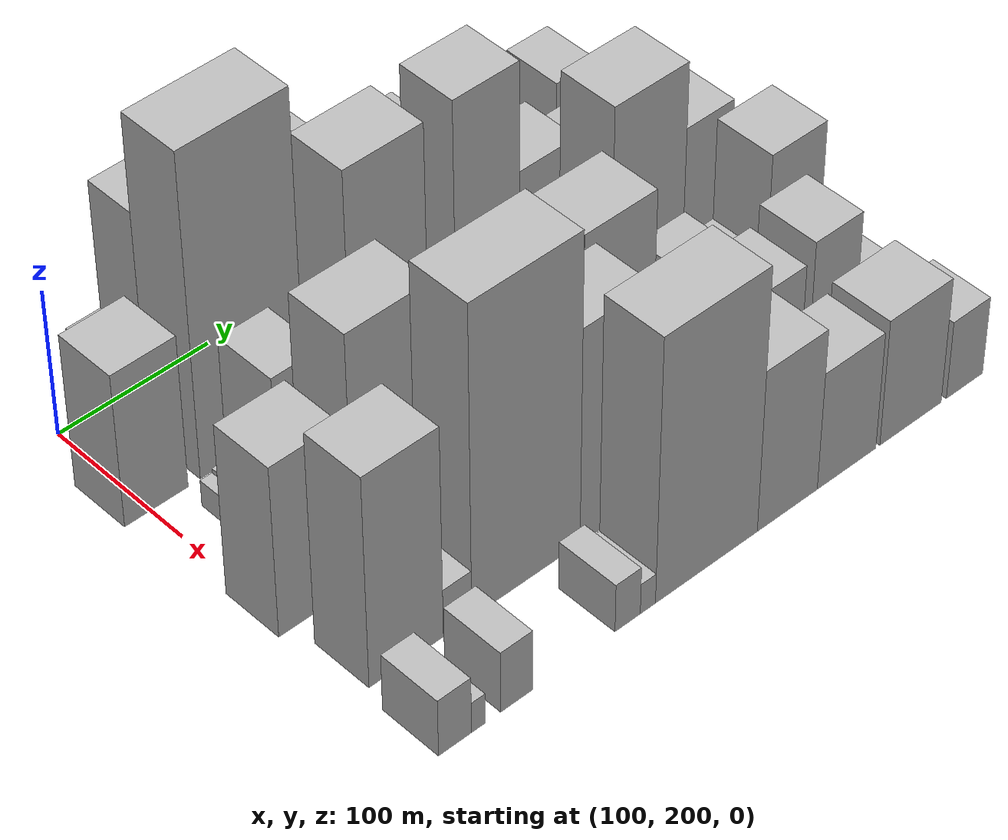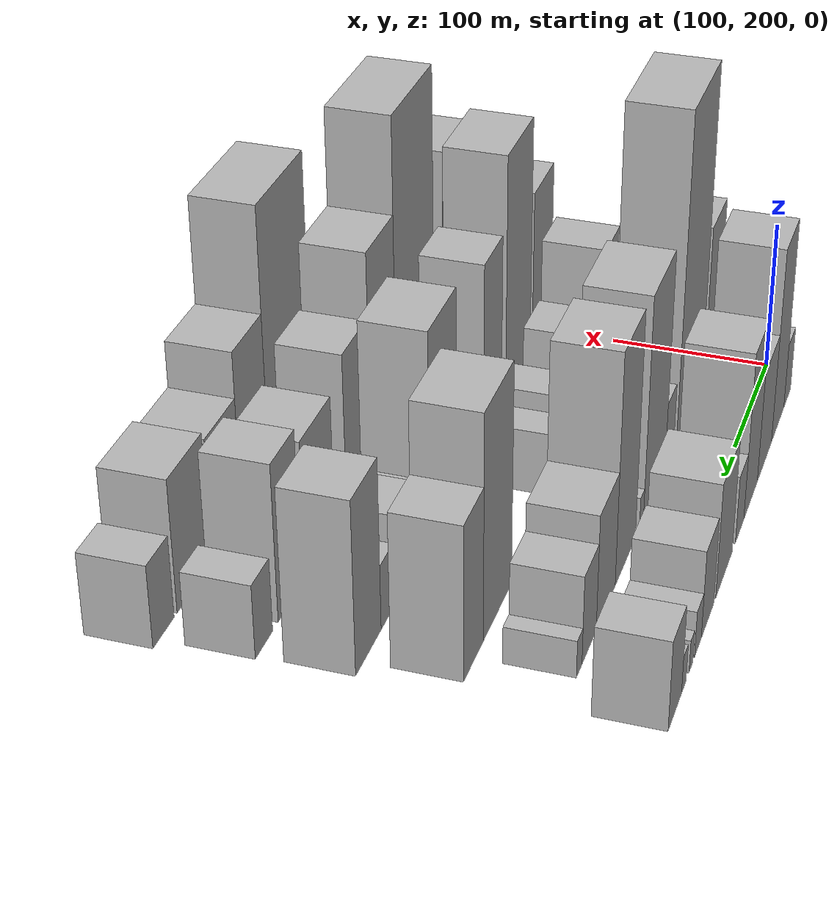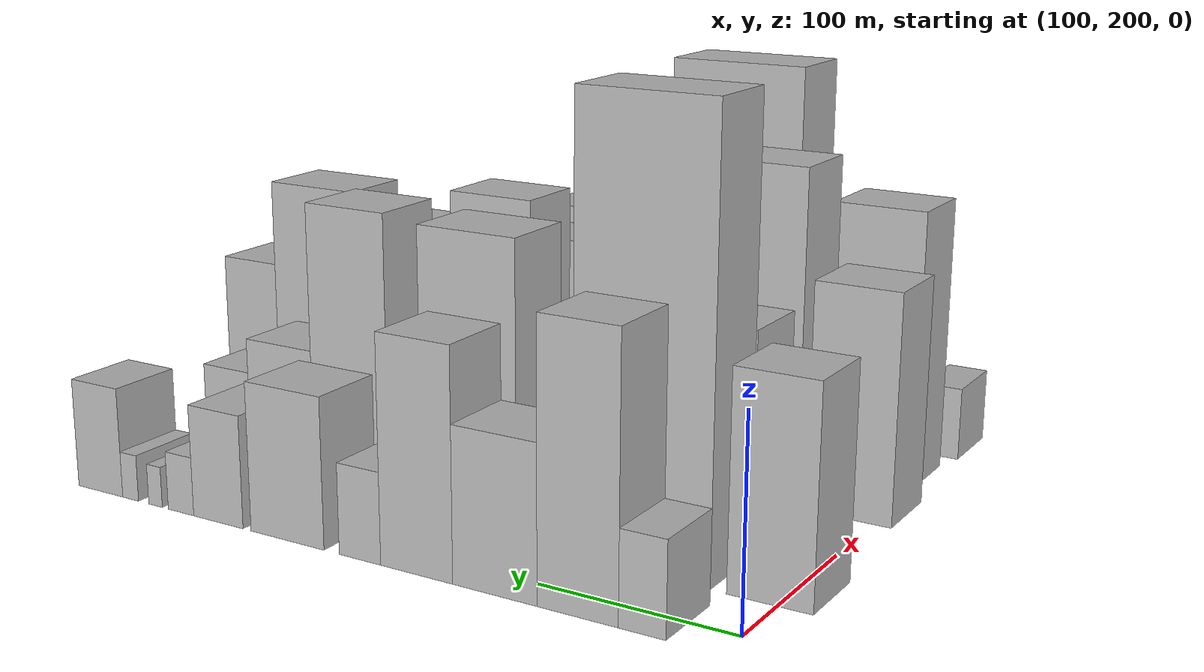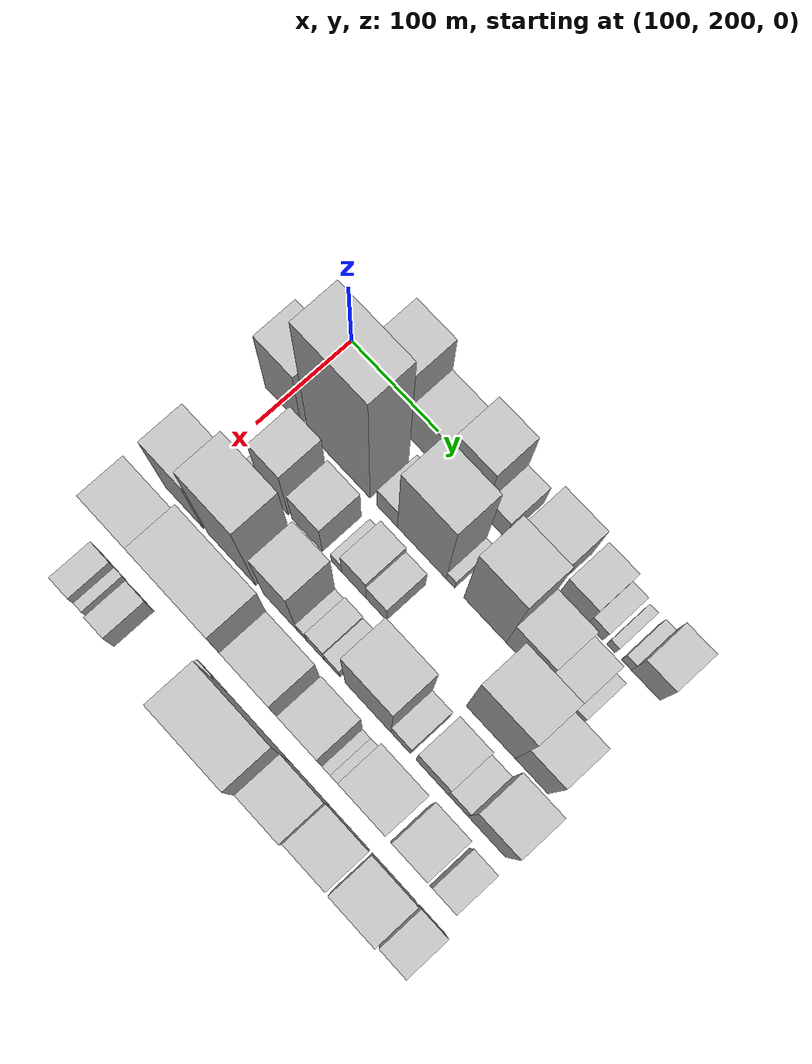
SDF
<sdf version="1.6">
 <world name="default">
  <model name="building_31">
   <static>1</static>
   <pose>100.0000 236.4385 0 0.000000 0.000000 0.000000</pose>
   <link name="link">
    <pose>0 0 22.50 0 0 0</pose>
    <collision name="collision"><geometry><box><size>40.0000 22.8084 45.0000</size></box></geometry></collision>
    <visual name="visual">
     <cast_shadows>0</cast_shadows>
     <geometry><box><size>40.0000 22.8084 45.0000</size></box></geometry>
     <material>
      <script>
       <uri>model://HANNAS_wall/materials/scripts</uri>
       <uri>model://HANNAS_wall/materials/textures</uri>
       <name>vrc/HANNAS_wall</name>
      </script>
     </material>
    </visual>
   </link>
  </model>
  <model name="building_32">
   <static>1</static>
   <pose>100.0000 268.0821 0 0.000000 0.000000 0.000000</pose>
   <link name="link">
    <pose>0 0 66.00 0 0 0</pose>
    <collision name="collision"><geometry><box><size>40.0000 40.4787 132.0000</size></box></geometry></collision>
    <visual name="visual">
     <cast_shadows>0</cast_shadows>
     <geometry><box><size>40.0000 40.4787 132.0000</size></box></geometry>
     <material>
      <script>
       <uri>model://HANNAS_wall/materials/scripts</uri>
       <uri>model://HANNAS_wall/materials/textures</uri>
       <name>vrc/HANNAS_wall</name>
      </script>
     </material>
    </visual>
   </link>
  </model>
  <model name="building_33">
   <static>1</static>
   <pose>100.0000 310.4709 0 0.000000 0.000000 0.000000</pose>
   <link name="link">
    <pose>0 0 37.50 0 0 0</pose>
    <collision name="collision"><geometry><box><size>40.0000 44.2989 75.0000</size></box></geometry></collision>
    <visual name="visual">
     <cast_shadows>0</cast_shadows>
     <geometry><box><size>40.0000 44.2989 75.0000</size></box></geometry>
     <material>
      <script>
       <uri>model://HANNAS_wall/materials/scripts</uri>
       <uri>model://HANNAS_wall/materials/textures</uri>
       <name>vrc/HANNAS_wall</name>
      </script>
     </material>
    </visual>
   </link>
  </model>
  <model name="building_34">
   <static>1</static>
   <pose>100.0000 352.6324 0 0.000000 0.000000 0.000000</pose>
   <link name="link">
    <pose>0 0 55.50 0 0 0</pose>
    <collision name="collision"><geometry><box><size>40.0000 40.0242 111.0000</size></box></geometry></collision>
    <visual name="visual">
     <cast_shadows>0</cast_shadows>
     <geometry><box><size>40.0000 40.0242 111.0000</size></box></geometry>
     <material>
      <script>
       <uri>model://HANNAS_wall/materials/scripts</uri>
       <uri>model://HANNAS_wall/materials/textures</uri>
       <name>vrc/HANNAS_wall</name>
      </script>
     </material>
    </visual>
   </link>
  </model>
  <model name="building_35">
   <static>1</static>
   <pose>100.0000 384.6178 0 0.000000 0.000000 0.000000</pose>
   <link name="link">
    <pose>0 0 22.50 0 0 0</pose>
    <collision name="collision"><geometry><box><size>40.0000 23.9466 45.0000</size></box></geometry></collision>
    <visual name="visual">
     <cast_shadows>0</cast_shadows>
     <geometry><box><size>40.0000 23.9466 45.0000</size></box></geometry>
     <material>
      <script>
       <uri>model://HANNAS_wall/materials/scripts</uri>
       <uri>model://HANNAS_wall/materials/textures</uri>
       <name>vrc/HANNAS_wall</name>
      </script>
     </material>
    </visual>
   </link>
  </model>
  <model name="building_36">
   <static>1</static>
   <pose>100.0000 427.8317 0 0.000000 0.000000 0.000000</pose>
   <link name="link">
    <pose>0 0 37.50 0 0 0</pose>
    <collision name="collision"><geometry><box><size>40.0000 44.4813 75.0000</size></box></geometry></collision>
    <visual name="visual">
     <cast_shadows>0</cast_shadows>
     <geometry><box><size>40.0000 44.4813 75.0000</size></box></geometry>
     <material>
      <script>
       <uri>model://HANNAS_wall/materials/scripts</uri>
       <uri>model://HANNAS_wall/materials/textures</uri>
       <name>vrc/HANNAS_wall</name>
      </script>
     </material>
    </visual>
   </link>
  </model>
  <model name="building_37">
   <static>1</static>
   <pose>100.0000 470.9186 0 0.000000 0.000000 0.000000</pose>
   <link name="link">
    <pose>0 0 28.50 0 0 0</pose>
    <collision name="collision"><geometry><box><size>40.0000 31.6924 57.0000</size></box></geometry></collision>
    <visual name="visual">
     <cast_shadows>0</cast_shadows>
     <geometry><box><size>40.0000 31.6924 57.0000</size></box></geometry>
     <material>
      <script>
       <uri>model://HANNAS_wall/materials/scripts</uri>
       <uri>model://HANNAS_wall/materials/textures</uri>
       <name>vrc/HANNAS_wall</name>
      </script>
     </material>
    </visual>
   </link>
  </model>
  <model name="building_38">
   <static>1</static>
   <pose>100.0000 495.1675 0 0.000000 0.000000 0.000000</pose>
   <link name="link">
    <pose>0 0 15.00 0 0 0</pose>
    <collision name="collision"><geometry><box><size>40.0000 16.8054 30.0000</size></box></geometry></collision>
    <visual name="visual">
     <cast_shadows>0</cast_shadows>
     <geometry><box><size>40.0000 16.8054 30.0000</size></box></geometry>
     <material>
      <script>
       <uri>model://HANNAS_wall/materials/scripts</uri>
       <uri>model://HANNAS_wall/materials/textures</uri>
       <name>vrc/HANNAS_wall</name>
      </script>
     </material>
    </visual>
   </link>
  </model>
  <model name="building_39">
   <static>1</static>
   <pose>100.0000 512.1227 0 0.000000 0.000000 0.000000</pose>
   <link name="link">
    <pose>0 0 10.50 0 0 0</pose>
    <collision name="collision"><geometry><box><size>40.0000 9.1050 21.0000</size></box></geometry></collision>
    <visual name="visual">
     <cast_shadows>0</cast_shadows>
     <geometry><box><size>40.0000 9.1050 21.0000</size></box></geometry>
     <material>
      <script>
       <uri>model://HANNAS_wall/materials/scripts</uri>
       <uri>model://HANNAS_wall/materials/textures</uri>
       <name>vrc/HANNAS_wall</name>
      </script>
     </material>
    </visual>
   </link>
  </model>
  <model name="building_40">
   <static>1</static>
   <pose>100.0000 529.0819 0 0.000000 0.000000 0.000000</pose>
   <link name="link">
    <pose>0 0 12.00 0 0 0</pose>
    <collision name="collision"><geometry><box><size>40.0000 10.8135 24.0000</size></box></geometry></collision>
    <visual name="visual">
     <cast_shadows>0</cast_shadows>
     <geometry><box><size>40.0000 10.8135 24.0000</size></box></geometry>
     <material>
      <script>
       <uri>model://HANNAS_wall/materials/scripts</uri>
       <uri>model://HANNAS_wall/materials/textures</uri>
       <name>vrc/HANNAS_wall</name>
      </script>
     </material>
    </visual>
   </link>
  </model>
  <model name="building_41">
   <static>1</static>
   <pose>100.0000 549.8728 0 0.000000 0.000000 0.000000</pose>
   <link name="link">
    <pose>0 0 28.50 0 0 0</pose>
    <collision name="collision"><geometry><box><size>40.0000 30.7684 57.0000</size></box></geometry></collision>
    <visual name="visual">
     <cast_shadows>0</cast_shadows>
     <geometry><box><size>40.0000 30.7684 57.0000</size></box></geometry>
     <material>
      <script>
       <uri>model://HANNAS_wall/materials/scripts</uri>
       <uri>model://HANNAS_wall/materials/textures</uri>
       <name>vrc/HANNAS_wall</name>
      </script>
     </material>
    </visual>
   </link>
  </model>
  <model name="building_84">
   <static>1</static>
   <pose>155.0000 203.7730 0 0.000000 0.000000 0.000000</pose>
   <link name="link">
    <pose>0 0 52.50 0 0 0</pose>
    <collision name="collision"><geometry><box><size>40.0000 41.4621 105.0000</size></box></geometry></collision>
    <visual name="visual">
     <cast_shadows>0</cast_shadows>
     <geometry><box><size>40.0000 41.4621 105.0000</size></box></geometry>
     <material>
      <script>
       <uri>model://HANNAS_wall/materials/scripts</uri>
       <uri>model://HANNAS_wall/materials/textures</uri>
       <name>vrc/HANNAS_wall</name>
      </script>
     </material>
    </visual>
   </link>
  </model>
  <model name="building_85">
   <static>1</static>
   <pose>155.0000 267.9622 0 0.000000 0.000000 0.000000</pose>
   <link name="link">
    <pose>0 0 109.50 0 0 0</pose>
    <collision name="collision"><geometry><box><size>40.0000 70.9164 219.0000</size></box></geometry></collision>
    <visual name="visual">
     <cast_shadows>0</cast_shadows>
     <geometry><box><size>40.0000 70.9164 219.0000</size></box></geometry>
     <material>
      <script>
       <uri>model://HANNAS_wall/materials/scripts</uri>
       <uri>model://HANNAS_wall/materials/textures</uri>
       <name>vrc/HANNAS_wall</name>
      </script>
     </material>
    </visual>
   </link>
  </model>
  <model name="building_86">
   <static>1</static>
   <pose>155.0000 322.9409 0 0.000000 0.000000 0.000000</pose>
   <link name="link">
    <pose>0 0 22.50 0 0 0</pose>
    <collision name="collision"><geometry><box><size>40.0000 23.0409 45.0000</size></box></geometry></collision>
    <visual name="visual">
     <cast_shadows>0</cast_shadows>
     <geometry><box><size>40.0000 23.0409 45.0000</size></box></geometry>
     <material>
      <script>
       <uri>model://HANNAS_wall/materials/scripts</uri>
       <uri>model://HANNAS_wall/materials/textures</uri>
       <name>vrc/HANNAS_wall</name>
      </script>
     </material>
    </visual>
   </link>
  </model>
  <model name="building_87">
   <static>1</static>
   <pose>155.0000 361.7019 0 0.000000 0.000000 0.000000</pose>
   <link name="link">
    <pose>0 0 73.50 0 0 0</pose>
    <collision name="collision"><geometry><box><size>40.0000 54.4810 147.0000</size></box></geometry></collision>
    <visual name="visual">
     <cast_shadows>0</cast_shadows>
     <geometry><box><size>40.0000 54.4810 147.0000</size></box></geometry>
     <material>
      <script>
       <uri>model://HANNAS_wall/materials/scripts</uri>
       <uri>model://HANNAS_wall/materials/textures</uri>
       <name>vrc/HANNAS_wall</name>
      </script>
     </material>
    </visual>
   </link>
  </model>
  <model name="building_88">
   <static>1</static>
   <pose>155.0000 393.8146 0 0.000000 0.000000 0.000000</pose>
   <link name="link">
    <pose>0 0 10.50 0 0 0</pose>
    <collision name="collision"><geometry><box><size>40.0000 9.7444 21.0000</size></box></geometry></collision>
    <visual name="visual">
     <cast_shadows>0</cast_shadows>
     <geometry><box><size>40.0000 9.7444 21.0000</size></box></geometry>
     <material>
      <script>
       <uri>model://HANNAS_wall/materials/scripts</uri>
       <uri>model://HANNAS_wall/materials/textures</uri>
       <name>vrc/HANNAS_wall</name>
      </script>
     </material>
    </visual>
   </link>
  </model>
  <model name="building_89">
   <static>1</static>
   <pose>155.0000 432.0430 0 0.000000 0.000000 0.000000</pose>
   <link name="link">
    <pose>0 0 75.00 0 0 0</pose>
    <collision name="collision"><geometry><box><size>40.0000 46.7124 150.0000</size></box></geometry></collision>
    <visual name="visual">
     <cast_shadows>0</cast_shadows>
     <geometry><box><size>40.0000 46.7124 150.0000</size></box></geometry>
     <material>
      <script>
       <uri>model://HANNAS_wall/materials/scripts</uri>
       <uri>model://HANNAS_wall/materials/textures</uri>
       <name>vrc/HANNAS_wall</name>
      </script>
     </material>
    </visual>
   </link>
  </model>
  <model name="building_90">
   <static>1</static>
   <pose>155.0000 476.1677 0 0.000000 0.000000 0.000000</pose>
   <link name="link">
    <pose>0 0 37.50 0 0 0</pose>
    <collision name="collision"><geometry><box><size>40.0000 41.5370 75.0000</size></box></geometry></collision>
    <visual name="visual">
     <cast_shadows>0</cast_shadows>
     <geometry><box><size>40.0000 41.5370 75.0000</size></box></geometry>
     <material>
      <script>
       <uri>model://HANNAS_wall/materials/scripts</uri>
       <uri>model://HANNAS_wall/materials/textures</uri>
       <name>vrc/HANNAS_wall</name>
      </script>
     </material>
    </visual>
   </link>
  </model>
  <model name="building_91">
   <static>1</static>
   <pose>155.0000 511.8424 0 0.000000 0.000000 0.000000</pose>
   <link name="link">
    <pose>0 0 28.50 0 0 0</pose>
    <collision name="collision"><geometry><box><size>40.0000 29.8126 57.0000</size></box></geometry></collision>
    <visual name="visual">
     <cast_shadows>0</cast_shadows>
     <geometry><box><size>40.0000 29.8126 57.0000</size></box></geometry>
     <material>
      <script>
       <uri>model://HANNAS_wall/materials/scripts</uri>
       <uri>model://HANNAS_wall/materials/textures</uri>
       <name>vrc/HANNAS_wall</name>
      </script>
     </material>
    </visual>
   </link>
  </model>
  <model name="building_92">
   <static>1</static>
   <pose>155.0000 532.4043 0 0.000000 0.000000 0.000000</pose>
   <link name="link">
    <pose>0 0 12.00 0 0 0</pose>
    <collision name="collision"><geometry><box><size>40.0000 11.3112 24.0000</size></box></geometry></collision>
    <visual name="visual">
     <cast_shadows>0</cast_shadows>
     <geometry><box><size>40.0000 11.3112 24.0000</size></box></geometry>
     <material>
      <script>
       <uri>model://HANNAS_wall/materials/scripts</uri>
       <uri>model://HANNAS_wall/materials/textures</uri>
       <name>vrc/HANNAS_wall</name>
      </script>
     </material>
    </visual>
   </link>
  </model>
  <model name="building_133">
   <static>1</static>
   <pose>210.0000 225.0941 0 0.000000 0.000000 0.000000</pose>
   <link name="link">
    <pose>0 0 9.00 0 0 0</pose>
    <collision name="collision"><geometry><box><size>40.0000 8.0562 18.0000</size></box></geometry></collision>
    <visual name="visual">
     <cast_shadows>0</cast_shadows>
     <geometry><box><size>40.0000 8.0562 18.0000</size></box></geometry>
     <material>
      <script>
       <uri>model://HANNAS_wall/materials/scripts</uri>
       <uri>model://HANNAS_wall/materials/textures</uri>
       <name>vrc/HANNAS_wall</name>
      </script>
     </material>
    </visual>
   </link>
  </model>
  <model name="building_134">
   <static>1</static>
   <pose>210.0000 233.9001 0 0.000000 0.000000 0.000000</pose>
   <link name="link">
    <pose>0 0 10.50 0 0 0</pose>
    <collision name="collision"><geometry><box><size>40.0000 9.5558 21.0000</size></box></geometry></collision>
    <visual name="visual">
     <cast_shadows>0</cast_shadows>
     <geometry><box><size>40.0000 9.5558 21.0000</size></box></geometry>
     <material>
      <script>
       <uri>model://HANNAS_wall/materials/scripts</uri>
       <uri>model://HANNAS_wall/materials/textures</uri>
       <name>vrc/HANNAS_wall</name>
      </script>
     </material>
    </visual>
   </link>
  </model>
  <model name="building_135">
   <static>1</static>
   <pose>210.0000 254.8909 0 0.000000 0.000000 0.000000</pose>
   <link name="link">
    <pose>0 0 52.50 0 0 0</pose>
    <collision name="collision"><geometry><box><size>40.0000 32.4257 105.0000</size></box></geometry></collision>
    <visual name="visual">
     <cast_shadows>0</cast_shadows>
     <geometry><box><size>40.0000 32.4257 105.0000</size></box></geometry>
     <material>
      <script>
       <uri>model://HANNAS_wall/materials/scripts</uri>
       <uri>model://HANNAS_wall/materials/textures</uri>
       <name>vrc/HANNAS_wall</name>
      </script>
     </material>
    </visual>
   </link>
  </model>
  <model name="building_136">
   <static>1</static>
   <pose>210.0000 292.4346 0 0.000000 0.000000 0.000000</pose>
   <link name="link">
    <pose>0 0 33.00 0 0 0</pose>
    <collision name="collision"><geometry><box><size>40.0000 34.6618 66.0000</size></box></geometry></collision>
    <visual name="visual">
     <cast_shadows>0</cast_shadows>
     <geometry><box><size>40.0000 34.6618 66.0000</size></box></geometry>
     <material>
      <script>
       <uri>model://HANNAS_wall/materials/scripts</uri>
       <uri>model://HANNAS_wall/materials/textures</uri>
       <name>vrc/HANNAS_wall</name>
      </script>
     </material>
    </visual>
   </link>
  </model>
  <model name="building_137">
   <static>1</static>
   <pose>210.0000 325.6963 0 0.000000 0.000000 0.000000</pose>
   <link name="link">
    <pose>0 0 12.00 0 0 0</pose>
    <collision name="collision"><geometry><box><size>40.0000 11.8617 24.0000</size></box></geometry></collision>
    <visual name="visual">
     <cast_shadows>0</cast_shadows>
     <geometry><box><size>40.0000 11.8617 24.0000</size></box></geometry>
     <material>
      <script>
       <uri>model://HANNAS_wall/materials/scripts</uri>
       <uri>model://HANNAS_wall/materials/textures</uri>
       <name>vrc/HANNAS_wall</name>
      </script>
     </material>
    </visual>
   </link>
  </model>
  <model name="building_138">
   <static>1</static>
   <pose>210.0000 345.3453 0 0.000000 0.000000 0.000000</pose>
   <link name="link">
    <pose>0 0 27.00 0 0 0</pose>
    <collision name="collision"><geometry><box><size>40.0000 27.4362 54.0000</size></box></geometry></collision>
    <visual name="visual">
     <cast_shadows>0</cast_shadows>
     <geometry><box><size>40.0000 27.4362 54.0000</size></box></geometry>
     <material>
      <script>
       <uri>model://HANNAS_wall/materials/scripts</uri>
       <uri>model://HANNAS_wall/materials/textures</uri>
       <name>vrc/HANNAS_wall</name>
      </script>
     </material>
    </visual>
   </link>
  </model>
  <model name="building_139">
   <static>1</static>
   <pose>210.0000 370.4909 0 0.000000 0.000000 0.000000</pose>
   <link name="link">
    <pose>0 0 21.00 0 0 0</pose>
    <collision name="collision"><geometry><box><size>40.0000 22.8548 42.0000</size></box></geometry></collision>
    <visual name="visual">
     <cast_shadows>0</cast_shadows>
     <geometry><box><size>40.0000 22.8548 42.0000</size></box></geometry>
     <material>
      <script>
       <uri>model://HANNAS_wall/materials/scripts</uri>
       <uri>model://HANNAS_wall/materials/textures</uri>
       <name>vrc/HANNAS_wall</name>
      </script>
     </material>
    </visual>
   </link>
  </model>
  <model name="building_140">
   <static>1</static>
   <pose>210.0000 496.8057 0 0.000000 0.000000 0.000000</pose>
   <link name="link">
    <pose>0 0 72.00 0 0 0</pose>
    <collision name="collision"><geometry><box><size>40.0000 53.2583 144.0000</size></box></geometry></collision>
    <visual name="visual">
     <cast_shadows>0</cast_shadows>
     <geometry><box><size>40.0000 53.2583 144.0000</size></box></geometry>
     <material>
      <script>
       <uri>model://HANNAS_wall/materials/scripts</uri>
       <uri>model://HANNAS_wall/materials/textures</uri>
       <name>vrc/HANNAS_wall</name>
      </script>
     </material>
    </visual>
   </link>
  </model>
  <model name="building_141">
   <static>1</static>
   <pose>210.0000 541.0816 0 0.000000 0.000000 0.000000</pose>
   <link name="link">
    <pose>0 0 49.50 0 0 0</pose>
    <collision name="collision"><geometry><box><size>40.0000 35.2934 99.0000</size></box></geometry></collision>
    <visual name="visual">
     <cast_shadows>0</cast_shadows>
     <geometry><box><size>40.0000 35.2934 99.0000</size></box></geometry>
     <material>
      <script>
       <uri>model://HANNAS_wall/materials/scripts</uri>
       <uri>model://HANNAS_wall/materials/textures</uri>
       <name>vrc/HANNAS_wall</name>
      </script>
     </material>
    </visual>
   </link>
  </model>
  <model name="building_180">
   <static>1</static>
   <pose>265.0000 213.1099 0 0.000000 0.000000 0.000000</pose>
   <link name="link">
    <pose>0 0 58.50 0 0 0</pose>
    <collision name="collision"><geometry><box><size>40.0000 44.5974 117.0000</size></box></geometry></collision>
    <visual name="visual">
     <cast_shadows>0</cast_shadows>
     <geometry><box><size>40.0000 44.5974 117.0000</size></box></geometry>
     <material>
      <script>
       <uri>model://HANNAS_wall/materials/scripts</uri>
       <uri>model://HANNAS_wall/materials/textures</uri>
       <name>vrc/HANNAS_wall</name>
      </script>
     </material>
    </visual>
   </link>
  </model>
  <model name="building_181">
   <static>1</static>
   <pose>265.0000 267.8308 0 0.000000 0.000000 0.000000</pose>
   <link name="link">
    <pose>0 0 85.50 0 0 0</pose>
    <collision name="collision"><geometry><box><size>40.0000 54.8445 171.0000</size></box></geometry></collision>
    <visual name="visual">
     <cast_shadows>0</cast_shadows>
     <geometry><box><size>40.0000 54.8445 171.0000</size></box></geometry>
     <material>
      <script>
       <uri>model://HANNAS_wall/materials/scripts</uri>
       <uri>model://HANNAS_wall/materials/textures</uri>
       <name>vrc/HANNAS_wall</name>
      </script>
     </material>
    </visual>
   </link>
  </model>
  <model name="building_182">
   <static>1</static>
   <pose>265.0000 322.8962 0 0.000000 0.000000 0.000000</pose>
   <link name="link">
    <pose>0 0 61.50 0 0 0</pose>
    <collision name="collision"><geometry><box><size>40.0000 37.2862 123.0000</size></box></geometry></collision>
    <visual name="visual">
     <cast_shadows>0</cast_shadows>
     <geometry><box><size>40.0000 37.2862 123.0000</size></box></geometry>
     <material>
      <script>
       <uri>model://HANNAS_wall/materials/scripts</uri>
       <uri>model://HANNAS_wall/materials/textures</uri>
       <name>vrc/HANNAS_wall</name>
      </script>
     </material>
    </visual>
   </link>
  </model>
  <model name="building_183">
   <static>1</static>
   <pose>265.0000 347.2115 0 0.000000 0.000000 0.000000</pose>
   <link name="link">
    <pose>0 0 12.00 0 0 0</pose>
    <collision name="collision"><geometry><box><size>40.0000 11.3444 24.0000</size></box></geometry></collision>
    <visual name="visual">
     <cast_shadows>0</cast_shadows>
     <geometry><box><size>40.0000 11.3444 24.0000</size></box></geometry>
     <material>
      <script>
       <uri>model://HANNAS_wall/materials/scripts</uri>
       <uri>model://HANNAS_wall/materials/textures</uri>
       <name>vrc/HANNAS_wall</name>
      </script>
     </material>
    </visual>
   </link>
  </model>
  <model name="building_184">
   <static>1</static>
   <pose>265.0000 362.8229 0 0.000000 0.000000 0.000000</pose>
   <link name="link">
    <pose>0 0 18.00 0 0 0</pose>
    <collision name="collision"><geometry><box><size>40.0000 19.8783 36.0000</size></box></geometry></collision>
    <visual name="visual">
     <cast_shadows>0</cast_shadows>
     <geometry><box><size>40.0000 19.8783 36.0000</size></box></geometry>
     <material>
      <script>
       <uri>model://HANNAS_wall/materials/scripts</uri>
       <uri>model://HANNAS_wall/materials/textures</uri>
       <name>vrc/HANNAS_wall</name>
      </script>
     </material>
    </visual>
   </link>
  </model>
  <model name="building_185">
   <static>1</static>
   <pose>265.0000 381.4397 0 0.000000 0.000000 0.000000</pose>
   <link name="link">
    <pose>0 0 15.00 0 0 0</pose>
    <collision name="collision"><geometry><box><size>40.0000 17.3554 30.0000</size></box></geometry></collision>
    <visual name="visual">
     <cast_shadows>0</cast_shadows>
     <geometry><box><size>40.0000 17.3554 30.0000</size></box></geometry>
     <material>
      <script>
       <uri>model://HANNAS_wall/materials/scripts</uri>
       <uri>model://HANNAS_wall/materials/textures</uri>
       <name>vrc/HANNAS_wall</name>
      </script>
     </material>
    </visual>
   </link>
  </model>
  <model name="building_186">
   <static>1</static>
   <pose>265.0000 421.3776 0 0.000000 0.000000 0.000000</pose>
   <link name="link">
    <pose>0 0 69.00 0 0 0</pose>
    <collision name="collision"><geometry><box><size>40.0000 50.5204 138.0000</size></box></geometry></collision>
    <visual name="visual">
     <cast_shadows>0</cast_shadows>
     <geometry><box><size>40.0000 50.5204 138.0000</size></box></geometry>
     <material>
      <script>
       <uri>model://HANNAS_wall/materials/scripts</uri>
       <uri>model://HANNAS_wall/materials/textures</uri>
       <name>vrc/HANNAS_wall</name>
      </script>
     </material>
    </visual>
   </link>
  </model>
  <model name="building_187">
   <static>1</static>
   <pose>265.0000 457.3657 0 0.000000 0.000000 0.000000</pose>
   <link name="link">
    <pose>0 0 21.00 0 0 0</pose>
    <collision name="collision"><geometry><box><size>40.0000 21.4558 42.0000</size></box></geometry></collision>
    <visual name="visual">
     <cast_shadows>0</cast_shadows>
     <geometry><box><size>40.0000 21.4558 42.0000</size></box></geometry>
     <material>
      <script>
       <uri>model://HANNAS_wall/materials/scripts</uri>
       <uri>model://HANNAS_wall/materials/textures</uri>
       <name>vrc/HANNAS_wall</name>
      </script>
     </material>
    </visual>
   </link>
  </model>
  <model name="building_188">
   <static>1</static>
   <pose>265.0000 491.3283 0 0.000000 0.000000 0.000000</pose>
   <link name="link">
    <pose>0 0 30.00 0 0 0</pose>
    <collision name="collision"><geometry><box><size>40.0000 34.4693 60.0000</size></box></geometry></collision>
    <visual name="visual">
     <cast_shadows>0</cast_shadows>
     <geometry><box><size>40.0000 34.4693 60.0000</size></box></geometry>
     <material>
      <script>
       <uri>model://HANNAS_wall/materials/scripts</uri>
       <uri>model://HANNAS_wall/materials/textures</uri>
       <name>vrc/HANNAS_wall</name>
      </script>
     </material>
    </visual>
   </link>
  </model>
  <model name="building_189">
   <static>1</static>
   <pose>265.0000 519.4069 0 0.000000 0.000000 0.000000</pose>
   <link name="link">
    <pose>0 0 21.00 0 0 0</pose>
    <collision name="collision"><geometry><box><size>40.0000 21.6880 42.0000</size></box></geometry></collision>
    <visual name="visual">
     <cast_shadows>0</cast_shadows>
     <geometry><box><size>40.0000 21.6880 42.0000</size></box></geometry>
     <material>
      <script>
       <uri>model://HANNAS_wall/materials/scripts</uri>
       <uri>model://HANNAS_wall/materials/textures</uri>
       <name>vrc/HANNAS_wall</name>
      </script>
     </material>
    </visual>
   </link>
  </model>
  <model name="building_190">
   <static>1</static>
   <pose>265.0000 550.5508 0 0.000000 0.000000 0.000000</pose>
   <link name="link">
    <pose>0 0 55.50 0 0 0</pose>
    <collision name="collision"><geometry><box><size>40.0000 40.5996 111.0000</size></box></geometry></collision>
    <visual name="visual">
     <cast_shadows>0</cast_shadows>
     <geometry><box><size>40.0000 40.5996 111.0000</size></box></geometry>
     <material>
      <script>
       <uri>model://HANNAS_wall/materials/scripts</uri>
       <uri>model://HANNAS_wall/materials/textures</uri>
       <name>vrc/HANNAS_wall</name>
      </script>
     </material>
    </visual>
   </link>
  </model>
  <model name="building_229">
   <static>1</static>
   <pose>320.0000 225.3663 0 0.000000 0.000000 0.000000</pose>
   <link name="link">
    <pose>0 0 72.00 0 0 0</pose>
    <collision name="collision"><geometry><box><size>40.0000 48.6113 144.0000</size></box></geometry></collision>
    <visual name="visual">
     <cast_shadows>0</cast_shadows>
     <geometry><box><size>40.0000 48.6113 144.0000</size></box></geometry>
     <material>
      <script>
       <uri>model://HANNAS_wall/materials/scripts</uri>
       <uri>model://HANNAS_wall/materials/textures</uri>
       <name>vrc/HANNAS_wall</name>
      </script>
     </material>
    </visual>
   </link>
  </model>
  <model name="building_230">
   <static>1</static>
   <pose>320.0000 259.0724 0 0.000000 0.000000 0.000000</pose>
   <link name="link">
    <pose>0 0 16.50 0 0 0</pose>
    <collision name="collision"><geometry><box><size>40.0000 18.8009 33.0000</size></box></geometry></collision>
    <visual name="visual">
     <cast_shadows>0</cast_shadows>
     <geometry><box><size>40.0000 18.8009 33.0000</size></box></geometry>
     <material>
      <script>
       <uri>model://HANNAS_wall/materials/scripts</uri>
       <uri>model://HANNAS_wall/materials/textures</uri>
       <name>vrc/HANNAS_wall</name>
      </script>
     </material>
    </visual>
   </link>
  </model>
  <model name="building_231">
   <static>1</static>
   <pose>320.0000 305.3412 0 0.000000 0.000000 0.000000</pose>
   <link name="link">
    <pose>0 0 105.00 0 0 0</pose>
    <collision name="collision"><geometry><box><size>40.0000 73.7365 210.0000</size></box></geometry></collision>
    <visual name="visual">
     <cast_shadows>0</cast_shadows>
     <geometry><box><size>40.0000 73.7365 210.0000</size></box></geometry>
     <material>
      <script>
       <uri>model://HANNAS_wall/materials/scripts</uri>
       <uri>model://HANNAS_wall/materials/textures</uri>
       <name>vrc/HANNAS_wall</name>
      </script>
     </material>
    </visual>
   </link>
  </model>
  <model name="building_232">
   <static>1</static>
   <pose>320.0000 365.7297 0 0.000000 0.000000 0.000000</pose>
   <link name="link">
    <pose>0 0 73.50 0 0 0</pose>
    <collision name="collision"><geometry><box><size>40.0000 47.0406 147.0000</size></box></geometry></collision>
    <visual name="visual">
     <cast_shadows>0</cast_shadows>
     <geometry><box><size>40.0000 47.0406 147.0000</size></box></geometry>
     <material>
      <script>
       <uri>model://HANNAS_wall/materials/scripts</uri>
       <uri>model://HANNAS_wall/materials/textures</uri>
       <name>vrc/HANNAS_wall</name>
      </script>
     </material>
    </visual>
   </link>
  </model>
  <model name="building_233">
   <static>1</static>
   <pose>320.0000 412.0525 0 0.000000 0.000000 0.000000</pose>
   <link name="link">
    <pose>0 0 52.50 0 0 0</pose>
    <collision name="collision"><geometry><box><size>40.0000 39.6051 105.0000</size></box></geometry></collision>
    <visual name="visual">
     <cast_shadows>0</cast_shadows>
     <geometry><box><size>40.0000 39.6051 105.0000</size></box></geometry>
     <material>
      <script>
       <uri>model://HANNAS_wall/materials/scripts</uri>
       <uri>model://HANNAS_wall/materials/textures</uri>
       <name>vrc/HANNAS_wall</name>
      </script>
     </material>
    </visual>
   </link>
  </model>
  <model name="building_234">
   <static>1</static>
   <pose>320.0000 436.3697 0 0.000000 0.000000 0.000000</pose>
   <link name="link">
    <pose>0 0 10.50 0 0 0</pose>
    <collision name="collision"><geometry><box><size>40.0000 9.0293 21.0000</size></box></geometry></collision>
    <visual name="visual">
     <cast_shadows>0</cast_shadows>
     <geometry><box><size>40.0000 9.0293 21.0000</size></box></geometry>
     <material>
      <script>
       <uri>model://HANNAS_wall/materials/scripts</uri>
       <uri>model://HANNAS_wall/materials/textures</uri>
       <name>vrc/HANNAS_wall</name>
      </script>
     </material>
    </visual>
   </link>
  </model>
  <model name="building_235">
   <static>1</static>
   <pose>320.0000 446.3898 0 0.000000 0.000000 0.000000</pose>
   <link name="link">
    <pose>0 0 12.00 0 0 0</pose>
    <collision name="collision"><geometry><box><size>40.0000 11.0108 24.0000</size></box></geometry></collision>
    <visual name="visual">
     <cast_shadows>0</cast_shadows>
     <geometry><box><size>40.0000 11.0108 24.0000</size></box></geometry>
     <material>
      <script>
       <uri>model://HANNAS_wall/materials/scripts</uri>
       <uri>model://HANNAS_wall/materials/textures</uri>
       <name>vrc/HANNAS_wall</name>
      </script>
     </material>
    </visual>
   </link>
  </model>
  <model name="building_236">
   <static>1</static>
   <pose>320.0000 475.7975 0 0.000000 0.000000 0.000000</pose>
   <link name="link">
    <pose>0 0 45.00 0 0 0</pose>
    <collision name="collision"><geometry><box><size>40.0000 47.8047 90.0000</size></box></geometry></collision>
    <visual name="visual">
     <cast_shadows>0</cast_shadows>
     <geometry><box><size>40.0000 47.8047 90.0000</size></box></geometry>
     <material>
      <script>
       <uri>model://HANNAS_wall/materials/scripts</uri>
       <uri>model://HANNAS_wall/materials/textures</uri>
       <name>vrc/HANNAS_wall</name>
      </script>
     </material>
    </visual>
   </link>
  </model>
  <model name="building_237">
   <static>1</static>
   <pose>320.0000 523.0657 0 0.000000 0.000000 0.000000</pose>
   <link name="link">
    <pose>0 0 51.00 0 0 0</pose>
    <collision name="collision"><geometry><box><size>40.0000 34.7317 102.0000</size></box></geometry></collision>
    <visual name="visual">
     <cast_shadows>0</cast_shadows>
     <geometry><box><size>40.0000 34.7317 102.0000</size></box></geometry>
     <material>
      <script>
       <uri>model://HANNAS_wall/materials/scripts</uri>
       <uri>model://HANNAS_wall/materials/textures</uri>
       <name>vrc/HANNAS_wall</name>
      </script>
     </material>
    </visual>
   </link>
  </model>
  <model name="building_238">
   <static>1</static>
   <pose>320.0000 560.9193 0 0.000000 0.000000 0.000000</pose>
   <link name="link">
    <pose>0 0 24.00 0 0 0</pose>
    <collision name="collision"><geometry><box><size>40.0000 24.9754 48.0000</size></box></geometry></collision>
    <visual name="visual">
     <cast_shadows>0</cast_shadows>
     <geometry><box><size>40.0000 24.9754 48.0000</size></box></geometry>
     <material>
      <script>
       <uri>model://HANNAS_wall/materials/scripts</uri>
       <uri>model://HANNAS_wall/materials/textures</uri>
       <name>vrc/HANNAS_wall</name>
      </script>
     </material>
    </visual>
   </link>
  </model>
  <model name="building_282">
   <static>1</static>
   <pose>375.0000 207.1112 0 0.000000 0.000000 0.000000</pose>
   <link name="link">
    <pose>0 0 19.50 0 0 0</pose>
    <collision name="collision"><geometry><box><size>40.0000 21.2929 39.0000</size></box></geometry></collision>
    <visual name="visual">
     <cast_shadows>0</cast_shadows>
     <geometry><box><size>40.0000 21.2929 39.0000</size></box></geometry>
     <material>
      <script>
       <uri>model://HANNAS_wall/materials/scripts</uri>
       <uri>model://HANNAS_wall/materials/textures</uri>
       <name>vrc/HANNAS_wall</name>
      </script>
     </material>
    </visual>
   </link>
  </model>
  <model name="building_283">
   <static>1</static>
   <pose>375.0000 222.2869 0 0.000000 0.000000 0.000000</pose>
   <link name="link">
    <pose>0 0 10.50 0 0 0</pose>
    <collision name="collision"><geometry><box><size>40.0000 9.0584 21.0000</size></box></geometry></collision>
    <visual name="visual">
     <cast_shadows>0</cast_shadows>
     <geometry><box><size>40.0000 9.0584 21.0000</size></box></geometry>
     <material>
      <script>
       <uri>model://HANNAS_wall/materials/scripts</uri>
       <uri>model://HANNAS_wall/materials/textures</uri>
       <name>vrc/HANNAS_wall</name>
      </script>
     </material>
    </visual>
   </link>
  </model>
  <model name="building_284">
   <static>1</static>
   <pose>375.0000 247.3575 0 0.000000 0.000000 0.000000</pose>
   <link name="link">
    <pose>0 0 21.00 0 0 0</pose>
    <collision name="collision"><geometry><box><size>40.0000 21.0829 42.0000</size></box></geometry></collision>
    <visual name="visual">
     <cast_shadows>0</cast_shadows>
     <geometry><box><size>40.0000 21.0829 42.0000</size></box></geometry>
     <material>
      <script>
       <uri>model://HANNAS_wall/materials/scripts</uri>
       <uri>model://HANNAS_wall/materials/textures</uri>
       <name>vrc/HANNAS_wall</name>
      </script>
     </material>
    </visual>
   </link>
  </model>
  <model name="building_285">
   <static>1</static>
   <pose>375.0000 321.8688 0 0.000000 0.000000 0.000000</pose>
   <link name="link">
    <pose>0 0 16.50 0 0 0</pose>
    <collision name="collision"><geometry><box><size>40.0000 17.3132 33.0000</size></box></geometry></collision>
    <visual name="visual">
     <cast_shadows>0</cast_shadows>
     <geometry><box><size>40.0000 17.3132 33.0000</size></box></geometry>
     <material>
      <script>
       <uri>model://HANNAS_wall/materials/scripts</uri>
       <uri>model://HANNAS_wall/materials/textures</uri>
       <name>vrc/HANNAS_wall</name>
      </script>
     </material>
    </visual>
   </link>
  </model>
  <model name="building_286">
   <static>1</static>
   <pose>375.0000 335.7678 0 0.000000 0.000000 0.000000</pose>
   <link name="link">
    <pose>0 0 10.50 0 0 0</pose>
    <collision name="collision"><geometry><box><size>40.0000 10.4848 21.0000</size></box></geometry></collision>
    <visual name="visual">
     <cast_shadows>0</cast_shadows>
     <geometry><box><size>40.0000 10.4848 21.0000</size></box></geometry>
     <material>
      <script>
       <uri>model://HANNAS_wall/materials/scripts</uri>
       <uri>model://HANNAS_wall/materials/textures</uri>
       <name>vrc/HANNAS_wall</name>
      </script>
     </material>
    </visual>
   </link>
  </model>
  <model name="building_287">
   <static>1</static>
   <pose>375.0000 376.9137 0 0.000000 0.000000 0.000000</pose>
   <link name="link">
    <pose>0 0 90.00 0 0 0</pose>
    <collision name="collision"><geometry><box><size>40.0000 71.8070 180.0000</size></box></geometry></collision>
    <visual name="visual">
     <cast_shadows>0</cast_shadows>
     <geometry><box><size>40.0000 71.8070 180.0000</size></box></geometry>
     <material>
      <script>
       <uri>model://HANNAS_wall/materials/scripts</uri>
       <uri>model://HANNAS_wall/materials/textures</uri>
       <name>vrc/HANNAS_wall</name>
      </script>
     </material>
    </visual>
   </link>
  </model>
  <model name="building_288">
   <static>1</static>
   <pose>375.0000 434.5479 0 0.000000 0.000000 0.000000</pose>
   <link name="link">
    <pose>0 0 55.50 0 0 0</pose>
    <collision name="collision"><geometry><box><size>40.0000 43.4615 111.0000</size></box></geometry></collision>
    <visual name="visual">
     <cast_shadows>0</cast_shadows>
     <geometry><box><size>40.0000 43.4615 111.0000</size></box></geometry>
     <material>
      <script>
       <uri>model://HANNAS_wall/materials/scripts</uri>
       <uri>model://HANNAS_wall/materials/textures</uri>
       <name>vrc/HANNAS_wall</name>
      </script>
     </material>
    </visual>
   </link>
  </model>
  <model name="building_289">
   <static>1</static>
   <pose>375.0000 477.9762 0 0.000000 0.000000 0.000000</pose>
   <link name="link">
    <pose>0 0 40.50 0 0 0</pose>
    <collision name="collision"><geometry><box><size>40.0000 43.3950 81.0000</size></box></geometry></collision>
    <visual name="visual">
     <cast_shadows>0</cast_shadows>
     <geometry><box><size>40.0000 43.3950 81.0000</size></box></geometry>
     <material>
      <script>
       <uri>model://HANNAS_wall/materials/scripts</uri>
       <uri>model://HANNAS_wall/materials/textures</uri>
       <name>vrc/HANNAS_wall</name>
      </script>
     </material>
    </visual>
   </link>
  </model>
  <model name="building_290">
   <static>1</static>
   <pose>375.0000 525.9235 0 0.000000 0.000000 0.000000</pose>
   <link name="link">
    <pose>0 0 43.50 0 0 0</pose>
    <collision name="collision"><geometry><box><size>40.0000 46.4996 87.0000</size></box></geometry></collision>
    <visual name="visual">
     <cast_shadows>0</cast_shadows>
     <geometry><box><size>40.0000 46.4996 87.0000</size></box></geometry>
     <material>
      <script>
       <uri>model://HANNAS_wall/materials/scripts</uri>
       <uri>model://HANNAS_wall/materials/textures</uri>
       <name>vrc/HANNAS_wall</name>
      </script>
     </material>
    </visual>
   </link>
  </model>
  <model name="building_291">
   <static>1</static>
   <pose>375.0000 567.1765 0 0.000000 0.000000 0.000000</pose>
   <link name="link">
    <pose>0 0 27.00 0 0 0</pose>
    <collision name="collision"><geometry><box><size>40.0000 28.0064 54.0000</size></box></geometry></collision>
    <visual name="visual">
     <cast_shadows>0</cast_shadows>
     <geometry><box><size>40.0000 28.0064 54.0000</size></box></geometry>
     <material>
      <script>
       <uri>model://HANNAS_wall/materials/scripts</uri>
       <uri>model://HANNAS_wall/materials/textures</uri>
       <name>vrc/HANNAS_wall</name>
      </script>
     </material>
    </visual>
   </link>
  </model>
 </world>
</sdf>
